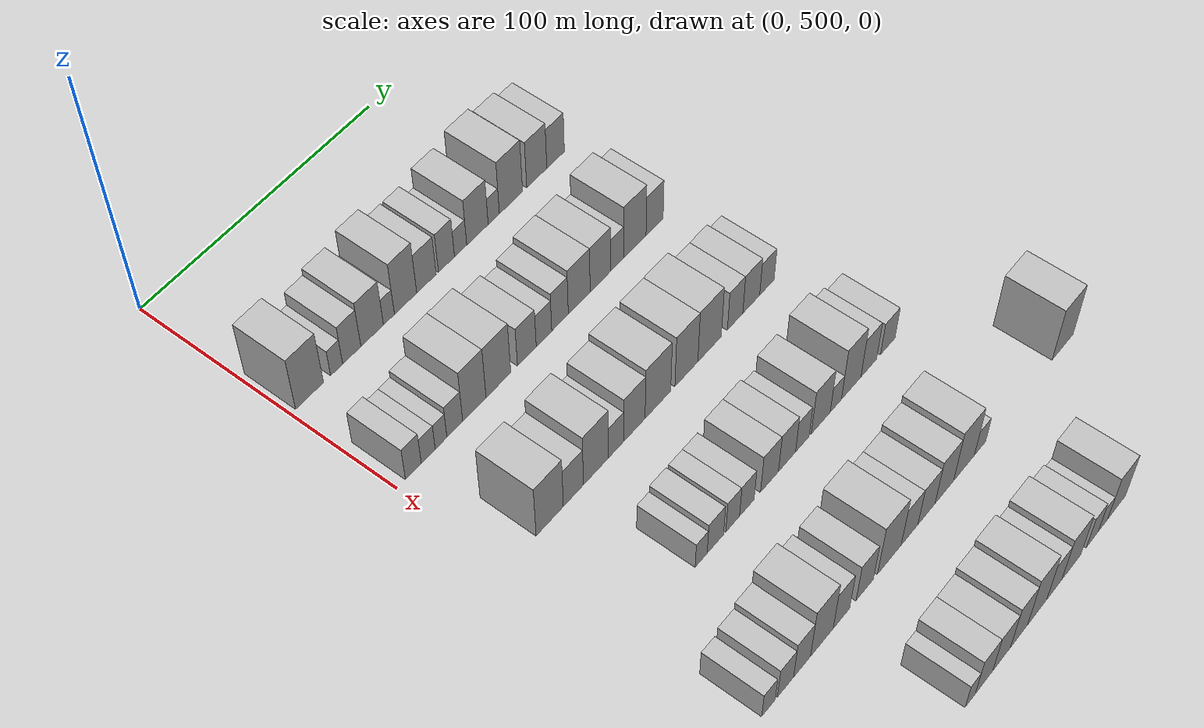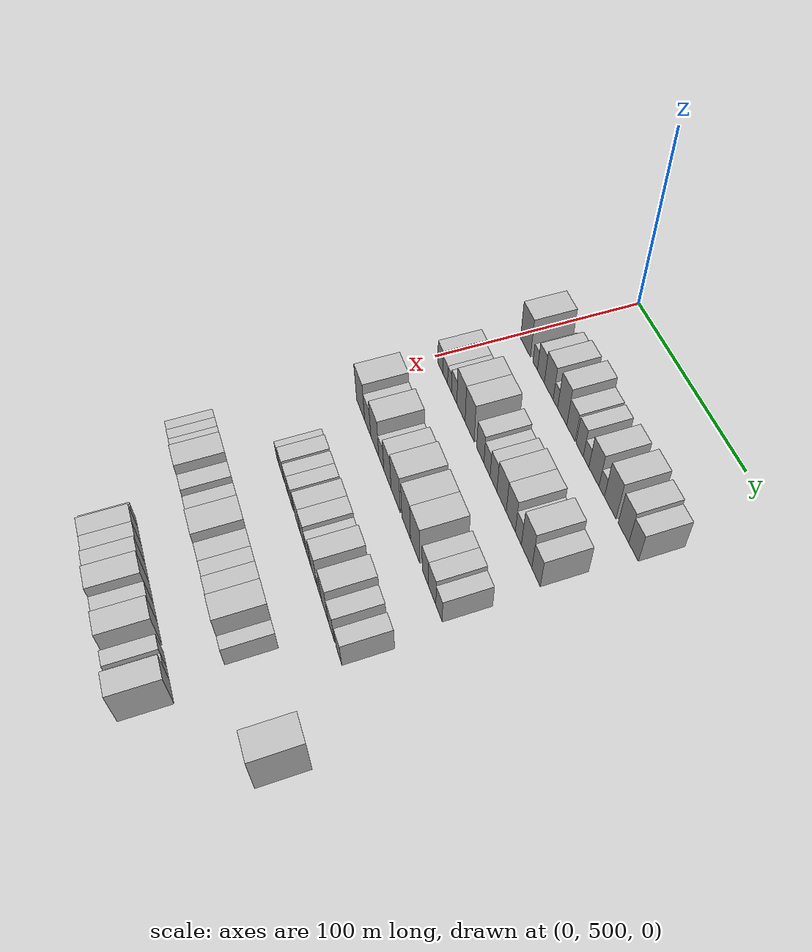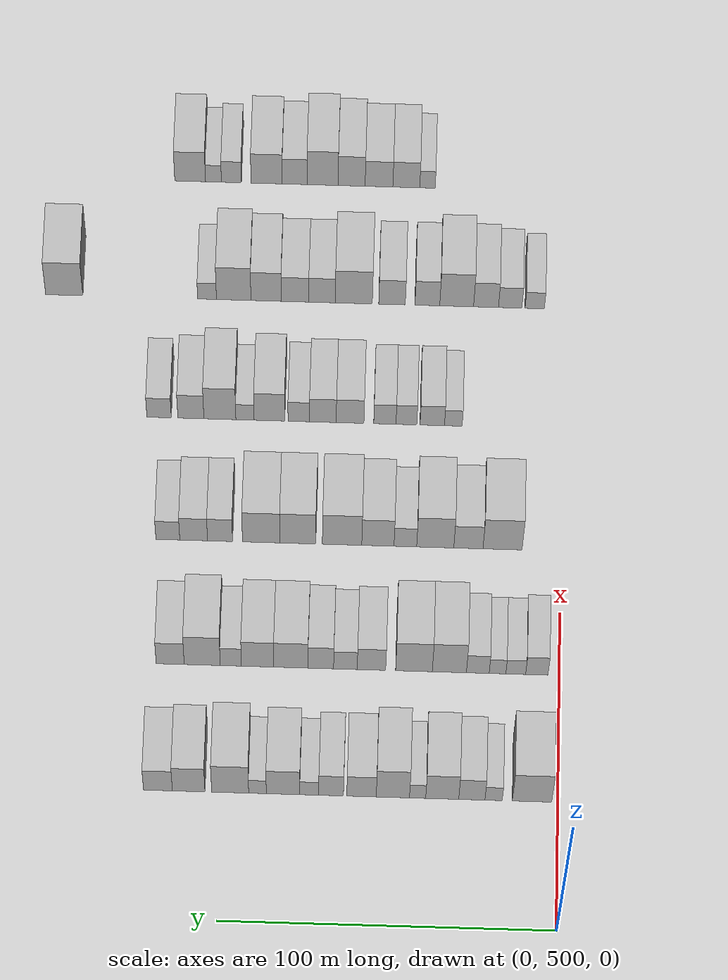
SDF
<sdf version="1.6">
 <world name="default">
  <model name="building_127">
   <static>1</static>
   <pose>50.0000 507.8237 0 0.000000 0.000000 0.000000</pose>
   <link name="link">
    <pose>0 0 12.00 0 0 0</pose>
    <collision name="collision"><geometry><box><size>20.0000 11.7088 24.0000</size></box></geometry></collision>
    <visual name="visual">
     <cast_shadows>0</cast_shadows>
     <geometry><box><size>20.0000 11.7088 24.0000</size></box></geometry>
     <material>
      <script>
       <uri>model://HANNAS_wall/materials/scripts</uri>
       <uri>model://HANNAS_wall/materials/textures</uri>
       <name>vrc/HANNAS_wall</name>
      </script>
     </material>
    </visual>
   </link>
  </model>
  <model name="building_128">
   <static>1</static>
   <pose>50.0000 519.2499 0 0.000000 0.000000 0.000000</pose>
   <link name="link">
    <pose>0 0 6.00 0 0 0</pose>
    <collision name="collision"><geometry><box><size>20.0000 5.1436 12.0000</size></box></geometry></collision>
    <visual name="visual">
     <cast_shadows>0</cast_shadows>
     <geometry><box><size>20.0000 5.1436 12.0000</size></box></geometry>
     <material>
      <script>
       <uri>model://HANNAS_wall/materials/scripts</uri>
       <uri>model://HANNAS_wall/materials/textures</uri>
       <name>vrc/HANNAS_wall</name>
      </script>
     </material>
    </visual>
   </link>
  </model>
  <model name="building_129">
   <static>1</static>
   <pose>50.0000 525.7228 0 0.000000 0.000000 0.000000</pose>
   <link name="link">
    <pose>0 0 9.00 0 0 0</pose>
    <collision name="collision"><geometry><box><size>20.0000 7.8022 18.0000</size></box></geometry></collision>
    <visual name="visual">
     <cast_shadows>0</cast_shadows>
     <geometry><box><size>20.0000 7.8022 18.0000</size></box></geometry>
     <material>
      <script>
       <uri>model://HANNAS_wall/materials/scripts</uri>
       <uri>model://HANNAS_wall/materials/textures</uri>
       <name>vrc/HANNAS_wall</name>
      </script>
     </material>
    </visual>
   </link>
  </model>
  <model name="building_130">
   <static>1</static>
   <pose>50.0000 534.5324 0 0.000000 0.000000 0.000000</pose>
   <link name="link">
    <pose>0 0 10.50 0 0 0</pose>
    <collision name="collision"><geometry><box><size>20.0000 9.8169 21.0000</size></box></geometry></collision>
    <visual name="visual">
     <cast_shadows>0</cast_shadows>
     <geometry><box><size>20.0000 9.8169 21.0000</size></box></geometry>
     <material>
      <script>
       <uri>model://HANNAS_wall/materials/scripts</uri>
       <uri>model://HANNAS_wall/materials/textures</uri>
       <name>vrc/HANNAS_wall</name>
      </script>
     </material>
    </visual>
   </link>
  </model>
  <model name="building_131">
   <static>1</static>
   <pose>50.0000 541.8533 0 0.000000 0.000000 0.000000</pose>
   <link name="link">
    <pose>0 0 6.00 0 0 0</pose>
    <collision name="collision"><geometry><box><size>20.0000 4.8249 12.0000</size></box></geometry></collision>
    <visual name="visual">
     <cast_shadows>0</cast_shadows>
     <geometry><box><size>20.0000 4.8249 12.0000</size></box></geometry>
     <material>
      <script>
       <uri>model://HANNAS_wall/materials/scripts</uri>
       <uri>model://HANNAS_wall/materials/textures</uri>
       <name>vrc/HANNAS_wall</name>
      </script>
     </material>
    </visual>
   </link>
  </model>
  <model name="building_132">
   <static>1</static>
   <pose>50.0000 549.2145 0 0.000000 0.000000 0.000000</pose>
   <link name="link">
    <pose>0 0 12.00 0 0 0</pose>
    <collision name="collision"><geometry><box><size>20.0000 9.8975 24.0000</size></box></geometry></collision>
    <visual name="visual">
     <cast_shadows>0</cast_shadows>
     <geometry><box><size>20.0000 9.8975 24.0000</size></box></geometry>
     <material>
      <script>
       <uri>model://HANNAS_wall/materials/scripts</uri>
       <uri>model://HANNAS_wall/materials/textures</uri>
       <name>vrc/HANNAS_wall</name>
      </script>
     </material>
    </visual>
   </link>
  </model>
  <model name="building_133">
   <static>1</static>
   <pose>50.0000 558.5361 0 0.000000 0.000000 0.000000</pose>
   <link name="link">
    <pose>0 0 9.00 0 0 0</pose>
    <collision name="collision"><geometry><box><size>20.0000 8.7458 18.0000</size></box></geometry></collision>
    <visual name="visual">
     <cast_shadows>0</cast_shadows>
     <geometry><box><size>20.0000 8.7458 18.0000</size></box></geometry>
     <material>
      <script>
       <uri>model://HANNAS_wall/materials/scripts</uri>
       <uri>model://HANNAS_wall/materials/textures</uri>
       <name>vrc/HANNAS_wall</name>
      </script>
     </material>
    </visual>
   </link>
  </model>
  <model name="building_134">
   <static>1</static>
   <pose>50.0000 567.5882 0 0.000000 0.000000 0.000000</pose>
   <link name="link">
    <pose>0 0 9.00 0 0 0</pose>
    <collision name="collision"><geometry><box><size>20.0000 7.3583 18.0000</size></box></geometry></collision>
    <visual name="visual">
     <cast_shadows>0</cast_shadows>
     <geometry><box><size>20.0000 7.3583 18.0000</size></box></geometry>
     <material>
      <script>
       <uri>model://HANNAS_wall/materials/scripts</uri>
       <uri>model://HANNAS_wall/materials/textures</uri>
       <name>vrc/HANNAS_wall</name>
      </script>
     </material>
    </visual>
   </link>
  </model>
  <model name="building_135">
   <static>1</static>
   <pose>50.0000 574.0757 0 0.000000 0.000000 0.000000</pose>
   <link name="link">
    <pose>0 0 6.00 0 0 0</pose>
    <collision name="collision"><geometry><box><size>20.0000 5.6167 12.0000</size></box></geometry></collision>
    <visual name="visual">
     <cast_shadows>0</cast_shadows>
     <geometry><box><size>20.0000 5.6167 12.0000</size></box></geometry>
     <material>
      <script>
       <uri>model://HANNAS_wall/materials/scripts</uri>
       <uri>model://HANNAS_wall/materials/textures</uri>
       <name>vrc/HANNAS_wall</name>
      </script>
     </material>
    </visual>
   </link>
  </model>
  <model name="building_136">
   <static>1</static>
   <pose>50.0000 581.8739 0 0.000000 0.000000 0.000000</pose>
   <link name="link">
    <pose>0 0 10.50 0 0 0</pose>
    <collision name="collision"><geometry><box><size>20.0000 9.9797 21.0000</size></box></geometry></collision>
    <visual name="visual">
     <cast_shadows>0</cast_shadows>
     <geometry><box><size>20.0000 9.9797 21.0000</size></box></geometry>
     <material>
      <script>
       <uri>model://HANNAS_wall/materials/scripts</uri>
       <uri>model://HANNAS_wall/materials/textures</uri>
       <name>vrc/HANNAS_wall</name>
      </script>
     </material>
    </visual>
   </link>
  </model>
  <model name="building_137">
   <static>1</static>
   <pose>50.0000 589.4873 0 0.000000 0.000000 0.000000</pose>
   <link name="link">
    <pose>0 0 6.00 0 0 0</pose>
    <collision name="collision"><geometry><box><size>20.0000 5.2471 12.0000</size></box></geometry></collision>
    <visual name="visual">
     <cast_shadows>0</cast_shadows>
     <geometry><box><size>20.0000 5.2471 12.0000</size></box></geometry>
     <material>
      <script>
       <uri>model://HANNAS_wall/materials/scripts</uri>
       <uri>model://HANNAS_wall/materials/textures</uri>
       <name>vrc/HANNAS_wall</name>
      </script>
     </material>
    </visual>
   </link>
  </model>
  <model name="building_138">
   <static>1</static>
   <pose>50.0000 597.6080 0 0.000000 0.000000 0.000000</pose>
   <link name="link">
    <pose>0 0 12.00 0 0 0</pose>
    <collision name="collision"><geometry><box><size>20.0000 10.9945 24.0000</size></box></geometry></collision>
    <visual name="visual">
     <cast_shadows>0</cast_shadows>
     <geometry><box><size>20.0000 10.9945 24.0000</size></box></geometry>
     <material>
      <script>
       <uri>model://HANNAS_wall/materials/scripts</uri>
       <uri>model://HANNAS_wall/materials/textures</uri>
       <name>vrc/HANNAS_wall</name>
      </script>
     </material>
    </visual>
   </link>
  </model>
  <model name="building_139">
   <static>1</static>
   <pose>50.0000 609.9554 0 0.000000 0.000000 0.000000</pose>
   <link name="link">
    <pose>0 0 10.50 0 0 0</pose>
    <collision name="collision"><geometry><box><size>20.0000 9.7003 21.0000</size></box></geometry></collision>
    <visual name="visual">
     <cast_shadows>0</cast_shadows>
     <geometry><box><size>20.0000 9.7003 21.0000</size></box></geometry>
     <material>
      <script>
       <uri>model://HANNAS_wall/materials/scripts</uri>
       <uri>model://HANNAS_wall/materials/textures</uri>
       <name>vrc/HANNAS_wall</name>
      </script>
     </material>
    </visual>
   </link>
  </model>
  <model name="building_140">
   <static>1</static>
   <pose>50.0000 619.1002 0 0.000000 0.000000 0.000000</pose>
   <link name="link">
    <pose>0 0 9.00 0 0 0</pose>
    <collision name="collision"><geometry><box><size>20.0000 8.5892 18.0000</size></box></geometry></collision>
    <visual name="visual">
     <cast_shadows>0</cast_shadows>
     <geometry><box><size>20.0000 8.5892 18.0000</size></box></geometry>
     <material>
      <script>
       <uri>model://HANNAS_wall/materials/scripts</uri>
       <uri>model://HANNAS_wall/materials/textures</uri>
       <name>vrc/HANNAS_wall</name>
      </script>
     </material>
    </visual>
   </link>
  </model>
  <model name="building_258">
   <static>1</static>
   <pose>90.0000 506.9615 0 0.000000 0.000000 0.000000</pose>
   <link name="link">
    <pose>0 0 7.50 0 0 0</pose>
    <collision name="collision"><geometry><box><size>20.0000 6.7073 15.0000</size></box></geometry></collision>
    <visual name="visual">
     <cast_shadows>0</cast_shadows>
     <geometry><box><size>20.0000 6.7073 15.0000</size></box></geometry>
     <material>
      <script>
       <uri>model://HANNAS_wall/materials/scripts</uri>
       <uri>model://HANNAS_wall/materials/textures</uri>
       <name>vrc/HANNAS_wall</name>
      </script>
     </material>
    </visual>
   </link>
  </model>
  <model name="building_259">
   <static>1</static>
   <pose>90.0000 513.2793 0 0.000000 0.000000 0.000000</pose>
   <link name="link">
    <pose>0 0 6.00 0 0 0</pose>
    <collision name="collision"><geometry><box><size>20.0000 5.9283 12.0000</size></box></geometry></collision>
    <visual name="visual">
     <cast_shadows>0</cast_shadows>
     <geometry><box><size>20.0000 5.9283 12.0000</size></box></geometry>
     <material>
      <script>
       <uri>model://HANNAS_wall/materials/scripts</uri>
       <uri>model://HANNAS_wall/materials/textures</uri>
       <name>vrc/HANNAS_wall</name>
      </script>
     </material>
    </visual>
   </link>
  </model>
  <model name="building_260">
   <static>1</static>
   <pose>90.0000 518.7518 0 0.000000 0.000000 0.000000</pose>
   <link name="link">
    <pose>0 0 6.00 0 0 0</pose>
    <collision name="collision"><geometry><box><size>20.0000 5.0167 12.0000</size></box></geometry></collision>
    <visual name="visual">
     <cast_shadows>0</cast_shadows>
     <geometry><box><size>20.0000 5.0167 12.0000</size></box></geometry>
     <material>
      <script>
       <uri>model://HANNAS_wall/materials/scripts</uri>
       <uri>model://HANNAS_wall/materials/textures</uri>
       <name>vrc/HANNAS_wall</name>
      </script>
     </material>
    </visual>
   </link>
  </model>
  <model name="building_261">
   <static>1</static>
   <pose>90.0000 524.6782 0 0.000000 0.000000 0.000000</pose>
   <link name="link">
    <pose>0 0 7.50 0 0 0</pose>
    <collision name="collision"><geometry><box><size>20.0000 6.8361 15.0000</size></box></geometry></collision>
    <visual name="visual">
     <cast_shadows>0</cast_shadows>
     <geometry><box><size>20.0000 6.8361 15.0000</size></box></geometry>
     <material>
      <script>
       <uri>model://HANNAS_wall/materials/scripts</uri>
       <uri>model://HANNAS_wall/materials/textures</uri>
       <name>vrc/HANNAS_wall</name>
      </script>
     </material>
    </visual>
   </link>
  </model>
  <model name="building_262">
   <static>1</static>
   <pose>90.0000 533.2211 0 0.000000 0.000000 0.000000</pose>
   <link name="link">
    <pose>0 0 12.00 0 0 0</pose>
    <collision name="collision"><geometry><box><size>20.0000 10.2496 24.0000</size></box></geometry></collision>
    <visual name="visual">
     <cast_shadows>0</cast_shadows>
     <geometry><box><size>20.0000 10.2496 24.0000</size></box></geometry>
     <material>
      <script>
       <uri>model://HANNAS_wall/materials/scripts</uri>
       <uri>model://HANNAS_wall/materials/textures</uri>
       <name>vrc/HANNAS_wall</name>
      </script>
     </material>
    </visual>
   </link>
  </model>
  <model name="building_263">
   <static>1</static>
   <pose>90.0000 543.8497 0 0.000000 0.000000 0.000000</pose>
   <link name="link">
    <pose>0 0 12.00 0 0 0</pose>
    <collision name="collision"><geometry><box><size>20.0000 11.0077 24.0000</size></box></geometry></collision>
    <visual name="visual">
     <cast_shadows>0</cast_shadows>
     <geometry><box><size>20.0000 11.0077 24.0000</size></box></geometry>
     <material>
      <script>
       <uri>model://HANNAS_wall/materials/scripts</uri>
       <uri>model://HANNAS_wall/materials/textures</uri>
       <name>vrc/HANNAS_wall</name>
      </script>
     </material>
    </visual>
   </link>
  </model>
  <model name="building_264">
   <static>1</static>
   <pose>90.0000 556.6206 0 0.000000 0.000000 0.000000</pose>
   <link name="link">
    <pose>0 0 9.00 0 0 0</pose>
    <collision name="collision"><geometry><box><size>20.0000 8.5340 18.0000</size></box></geometry></collision>
    <visual name="visual">
     <cast_shadows>0</cast_shadows>
     <geometry><box><size>20.0000 8.5340 18.0000</size></box></geometry>
     <material>
      <script>
       <uri>model://HANNAS_wall/materials/scripts</uri>
       <uri>model://HANNAS_wall/materials/textures</uri>
       <name>vrc/HANNAS_wall</name>
      </script>
     </material>
    </visual>
   </link>
  </model>
  <model name="building_265">
   <static>1</static>
   <pose>90.0000 564.4350 0 0.000000 0.000000 0.000000</pose>
   <link name="link">
    <pose>0 0 7.50 0 0 0</pose>
    <collision name="collision"><geometry><box><size>20.0000 7.0948 15.0000</size></box></geometry></collision>
    <visual name="visual">
     <cast_shadows>0</cast_shadows>
     <geometry><box><size>20.0000 7.0948 15.0000</size></box></geometry>
     <material>
      <script>
       <uri>model://HANNAS_wall/materials/scripts</uri>
       <uri>model://HANNAS_wall/materials/textures</uri>
       <name>vrc/HANNAS_wall</name>
      </script>
     </material>
    </visual>
   </link>
  </model>
  <model name="building_266">
   <static>1</static>
   <pose>90.0000 571.8234 0 0.000000 0.000000 0.000000</pose>
   <link name="link">
    <pose>0 0 9.00 0 0 0</pose>
    <collision name="collision"><geometry><box><size>20.0000 7.6820 18.0000</size></box></geometry></collision>
    <visual name="visual">
     <cast_shadows>0</cast_shadows>
     <geometry><box><size>20.0000 7.6820 18.0000</size></box></geometry>
     <material>
      <script>
       <uri>model://HANNAS_wall/materials/scripts</uri>
       <uri>model://HANNAS_wall/materials/textures</uri>
       <name>vrc/HANNAS_wall</name>
      </script>
     </material>
    </visual>
   </link>
  </model>
  <model name="building_267">
   <static>1</static>
   <pose>90.0000 580.8050 0 0.000000 0.000000 0.000000</pose>
   <link name="link">
    <pose>0 0 10.50 0 0 0</pose>
    <collision name="collision"><geometry><box><size>20.0000 10.2813 21.0000</size></box></geometry></collision>
    <visual name="visual">
     <cast_shadows>0</cast_shadows>
     <geometry><box><size>20.0000 10.2813 21.0000</size></box></geometry>
     <material>
      <script>
       <uri>model://HANNAS_wall/materials/scripts</uri>
       <uri>model://HANNAS_wall/materials/textures</uri>
       <name>vrc/HANNAS_wall</name>
      </script>
     </material>
    </visual>
   </link>
  </model>
  <model name="building_268">
   <static>1</static>
   <pose>90.0000 590.8108 0 0.000000 0.000000 0.000000</pose>
   <link name="link">
    <pose>0 0 10.50 0 0 0</pose>
    <collision name="collision"><geometry><box><size>20.0000 9.7304 21.0000</size></box></geometry></collision>
    <visual name="visual">
     <cast_shadows>0</cast_shadows>
     <geometry><box><size>20.0000 9.7304 21.0000</size></box></geometry>
     <material>
      <script>
       <uri>model://HANNAS_wall/materials/scripts</uri>
       <uri>model://HANNAS_wall/materials/textures</uri>
       <name>vrc/HANNAS_wall</name>
      </script>
     </material>
    </visual>
   </link>
  </model>
  <model name="building_269">
   <static>1</static>
   <pose>90.0000 598.8529 0 0.000000 0.000000 0.000000</pose>
   <link name="link">
    <pose>0 0 7.50 0 0 0</pose>
    <collision name="collision"><geometry><box><size>20.0000 6.3538 15.0000</size></box></geometry></collision>
    <visual name="visual">
     <cast_shadows>0</cast_shadows>
     <geometry><box><size>20.0000 6.3538 15.0000</size></box></geometry>
     <material>
      <script>
       <uri>model://HANNAS_wall/materials/scripts</uri>
       <uri>model://HANNAS_wall/materials/textures</uri>
       <name>vrc/HANNAS_wall</name>
      </script>
     </material>
    </visual>
   </link>
  </model>
  <model name="building_270">
   <static>1</static>
   <pose>90.0000 607.4461 0 0.000000 0.000000 0.000000</pose>
   <link name="link">
    <pose>0 0 12.00 0 0 0</pose>
    <collision name="collision"><geometry><box><size>20.0000 10.8324 24.0000</size></box></geometry></collision>
    <visual name="visual">
     <cast_shadows>0</cast_shadows>
     <geometry><box><size>20.0000 10.8324 24.0000</size></box></geometry>
     <material>
      <script>
       <uri>model://HANNAS_wall/materials/scripts</uri>
       <uri>model://HANNAS_wall/materials/textures</uri>
       <name>vrc/HANNAS_wall</name>
      </script>
     </material>
    </visual>
   </link>
  </model>
  <model name="building_271">
   <static>1</static>
   <pose>90.0000 617.0788 0 0.000000 0.000000 0.000000</pose>
   <link name="link">
    <pose>0 0 9.00 0 0 0</pose>
    <collision name="collision"><geometry><box><size>20.0000 8.4330 18.0000</size></box></geometry></collision>
    <visual name="visual">
     <cast_shadows>0</cast_shadows>
     <geometry><box><size>20.0000 8.4330 18.0000</size></box></geometry>
     <material>
      <script>
       <uri>model://HANNAS_wall/materials/scripts</uri>
       <uri>model://HANNAS_wall/materials/textures</uri>
       <name>vrc/HANNAS_wall</name>
      </script>
     </material>
    </visual>
   </link>
  </model>
  <model name="building_407">
   <static>1</static>
   <pose>130.0000 517.9141 0 0.000000 0.000000 0.000000</pose>
   <link name="link">
    <pose>0 0 12.00 0 0 0</pose>
    <collision name="collision"><geometry><box><size>20.0000 11.8391 24.0000</size></box></geometry></collision>
    <visual name="visual">
     <cast_shadows>0</cast_shadows>
     <geometry><box><size>20.0000 11.8391 24.0000</size></box></geometry>
     <material>
      <script>
       <uri>model://HANNAS_wall/materials/scripts</uri>
       <uri>model://HANNAS_wall/materials/textures</uri>
       <name>vrc/HANNAS_wall</name>
      </script>
     </material>
    </visual>
   </link>
  </model>
  <model name="building_408">
   <static>1</static>
   <pose>130.0000 528.2558 0 0.000000 0.000000 0.000000</pose>
   <link name="link">
    <pose>0 0 9.00 0 0 0</pose>
    <collision name="collision"><geometry><box><size>20.0000 8.8442 18.0000</size></box></geometry></collision>
    <visual name="visual">
     <cast_shadows>0</cast_shadows>
     <geometry><box><size>20.0000 8.8442 18.0000</size></box></geometry>
     <material>
      <script>
       <uri>model://HANNAS_wall/materials/scripts</uri>
       <uri>model://HANNAS_wall/materials/textures</uri>
       <name>vrc/HANNAS_wall</name>
      </script>
     </material>
    </visual>
   </link>
  </model>
  <model name="building_409">
   <static>1</static>
   <pose>130.0000 538.3096 0 0.000000 0.000000 0.000000</pose>
   <link name="link">
    <pose>0 0 12.00 0 0 0</pose>
    <collision name="collision"><geometry><box><size>20.0000 11.2634 24.0000</size></box></geometry></collision>
    <visual name="visual">
     <cast_shadows>0</cast_shadows>
     <geometry><box><size>20.0000 11.2634 24.0000</size></box></geometry>
     <material>
      <script>
       <uri>model://HANNAS_wall/materials/scripts</uri>
       <uri>model://HANNAS_wall/materials/textures</uri>
       <name>vrc/HANNAS_wall</name>
      </script>
     </material>
    </visual>
   </link>
  </model>
  <model name="building_410">
   <static>1</static>
   <pose>130.0000 547.3793 0 0.000000 0.000000 0.000000</pose>
   <link name="link">
    <pose>0 0 7.50 0 0 0</pose>
    <collision name="collision"><geometry><box><size>20.0000 6.8759 15.0000</size></box></geometry></collision>
    <visual name="visual">
     <cast_shadows>0</cast_shadows>
     <geometry><box><size>20.0000 6.8759 15.0000</size></box></geometry>
     <material>
      <script>
       <uri>model://HANNAS_wall/materials/scripts</uri>
       <uri>model://HANNAS_wall/materials/textures</uri>
       <name>vrc/HANNAS_wall</name>
      </script>
     </material>
    </visual>
   </link>
  </model>
  <model name="building_411">
   <static>1</static>
   <pose>130.0000 555.7069 0 0.000000 0.000000 0.000000</pose>
   <link name="link">
    <pose>0 0 10.50 0 0 0</pose>
    <collision name="collision"><geometry><box><size>20.0000 9.7793 21.0000</size></box></geometry></collision>
    <visual name="visual">
     <cast_shadows>0</cast_shadows>
     <geometry><box><size>20.0000 9.7793 21.0000</size></box></geometry>
     <material>
      <script>
       <uri>model://HANNAS_wall/materials/scripts</uri>
       <uri>model://HANNAS_wall/materials/textures</uri>
       <name>vrc/HANNAS_wall</name>
      </script>
     </material>
    </visual>
   </link>
  </model>
  <model name="building_412">
   <static>1</static>
   <pose>130.0000 566.5709 0 0.000000 0.000000 0.000000</pose>
   <link name="link">
    <pose>0 0 12.00 0 0 0</pose>
    <collision name="collision"><geometry><box><size>20.0000 11.9487 24.0000</size></box></geometry></collision>
    <visual name="visual">
     <cast_shadows>0</cast_shadows>
     <geometry><box><size>20.0000 11.9487 24.0000</size></box></geometry>
     <material>
      <script>
       <uri>model://HANNAS_wall/materials/scripts</uri>
       <uri>model://HANNAS_wall/materials/textures</uri>
       <name>vrc/HANNAS_wall</name>
      </script>
     </material>
    </visual>
   </link>
  </model>
  <model name="building_413">
   <static>1</static>
   <pose>130.0000 580.0032 0 0.000000 0.000000 0.000000</pose>
   <link name="link">
    <pose>0 0 12.00 0 0 0</pose>
    <collision name="collision"><geometry><box><size>20.0000 10.9160 24.0000</size></box></geometry></collision>
    <visual name="visual">
     <cast_shadows>0</cast_shadows>
     <geometry><box><size>20.0000 10.9160 24.0000</size></box></geometry>
     <material>
      <script>
       <uri>model://HANNAS_wall/materials/scripts</uri>
       <uri>model://HANNAS_wall/materials/textures</uri>
       <name>vrc/HANNAS_wall</name>
      </script>
     </material>
    </visual>
   </link>
  </model>
  <model name="building_414">
   <static>1</static>
   <pose>130.0000 591.1223 0 0.000000 0.000000 0.000000</pose>
   <link name="link">
    <pose>0 0 12.00 0 0 0</pose>
    <collision name="collision"><geometry><box><size>20.0000 11.3221 24.0000</size></box></geometry></collision>
    <visual name="visual">
     <cast_shadows>0</cast_shadows>
     <geometry><box><size>20.0000 11.3221 24.0000</size></box></geometry>
     <material>
      <script>
       <uri>model://HANNAS_wall/materials/scripts</uri>
       <uri>model://HANNAS_wall/materials/textures</uri>
       <name>vrc/HANNAS_wall</name>
      </script>
     </material>
    </visual>
   </link>
  </model>
  <model name="building_415">
   <static>1</static>
   <pose>130.0000 603.5851 0 0.000000 0.000000 0.000000</pose>
   <link name="link">
    <pose>0 0 9.00 0 0 0</pose>
    <collision name="collision"><geometry><box><size>20.0000 7.6035 18.0000</size></box></geometry></collision>
    <visual name="visual">
     <cast_shadows>0</cast_shadows>
     <geometry><box><size>20.0000 7.6035 18.0000</size></box></geometry>
     <material>
      <script>
       <uri>model://HANNAS_wall/materials/scripts</uri>
       <uri>model://HANNAS_wall/materials/textures</uri>
       <name>vrc/HANNAS_wall</name>
      </script>
     </material>
    </visual>
   </link>
  </model>
  <model name="building_416">
   <static>1</static>
   <pose>130.0000 611.5952 0 0.000000 0.000000 0.000000</pose>
   <link name="link">
    <pose>0 0 9.00 0 0 0</pose>
    <collision name="collision"><geometry><box><size>20.0000 8.4168 18.0000</size></box></geometry></collision>
    <visual name="visual">
     <cast_shadows>0</cast_shadows>
     <geometry><box><size>20.0000 8.4168 18.0000</size></box></geometry>
     <material>
      <script>
       <uri>model://HANNAS_wall/materials/scripts</uri>
       <uri>model://HANNAS_wall/materials/textures</uri>
       <name>vrc/HANNAS_wall</name>
      </script>
     </material>
    </visual>
   </link>
  </model>
  <model name="building_417">
   <static>1</static>
   <pose>130.0000 619.4290 0 0.000000 0.000000 0.000000</pose>
   <link name="link">
    <pose>0 0 7.50 0 0 0</pose>
    <collision name="collision"><geometry><box><size>20.0000 7.2508 15.0000</size></box></geometry></collision>
    <visual name="visual">
     <cast_shadows>0</cast_shadows>
     <geometry><box><size>20.0000 7.2508 15.0000</size></box></geometry>
     <material>
      <script>
       <uri>model://HANNAS_wall/materials/scripts</uri>
       <uri>model://HANNAS_wall/materials/textures</uri>
       <name>vrc/HANNAS_wall</name>
      </script>
     </material>
    </visual>
   </link>
  </model>
  <model name="building_538">
   <static>1</static>
   <pose>170.0000 533.6354 0 0.000000 0.000000 0.000000</pose>
   <link name="link">
    <pose>0 0 6.00 0 0 0</pose>
    <collision name="collision"><geometry><box><size>20.0000 5.4114 12.0000</size></box></geometry></collision>
    <visual name="visual">
     <cast_shadows>0</cast_shadows>
     <geometry><box><size>20.0000 5.4114 12.0000</size></box></geometry>
     <material>
      <script>
       <uri>model://HANNAS_wall/materials/scripts</uri>
       <uri>model://HANNAS_wall/materials/textures</uri>
       <name>vrc/HANNAS_wall</name>
      </script>
     </material>
    </visual>
   </link>
  </model>
  <model name="building_539">
   <static>1</static>
   <pose>170.0000 540.0781 0 0.000000 0.000000 0.000000</pose>
   <link name="link">
    <pose>0 0 7.50 0 0 0</pose>
    <collision name="collision"><geometry><box><size>20.0000 7.4740 15.0000</size></box></geometry></collision>
    <visual name="visual">
     <cast_shadows>0</cast_shadows>
     <geometry><box><size>20.0000 7.4740 15.0000</size></box></geometry>
     <material>
      <script>
       <uri>model://HANNAS_wall/materials/scripts</uri>
       <uri>model://HANNAS_wall/materials/textures</uri>
       <name>vrc/HANNAS_wall</name>
      </script>
     </material>
    </visual>
   </link>
  </model>
  <model name="building_540">
   <static>1</static>
   <pose>170.0000 548.0024 0 0.000000 0.000000 0.000000</pose>
   <link name="link">
    <pose>0 0 7.50 0 0 0</pose>
    <collision name="collision"><geometry><box><size>20.0000 6.3746 15.0000</size></box></geometry></collision>
    <visual name="visual">
     <cast_shadows>0</cast_shadows>
     <geometry><box><size>20.0000 6.3746 15.0000</size></box></geometry>
     <material>
      <script>
       <uri>model://HANNAS_wall/materials/scripts</uri>
       <uri>model://HANNAS_wall/materials/textures</uri>
       <name>vrc/HANNAS_wall</name>
      </script>
     </material>
    </visual>
   </link>
  </model>
  <model name="building_541">
   <static>1</static>
   <pose>170.0000 554.5923 0 0.000000 0.000000 0.000000</pose>
   <link name="link">
    <pose>0 0 7.50 0 0 0</pose>
    <collision name="collision"><geometry><box><size>20.0000 6.8050 15.0000</size></box></geometry></collision>
    <visual name="visual">
     <cast_shadows>0</cast_shadows>
     <geometry><box><size>20.0000 6.8050 15.0000</size></box></geometry>
     <material>
      <script>
       <uri>model://HANNAS_wall/materials/scripts</uri>
       <uri>model://HANNAS_wall/materials/textures</uri>
       <name>vrc/HANNAS_wall</name>
      </script>
     </material>
    </visual>
   </link>
  </model>
  <model name="building_542">
   <static>1</static>
   <pose>170.0000 565.2393 0 0.000000 0.000000 0.000000</pose>
   <link name="link">
    <pose>0 0 9.00 0 0 0</pose>
    <collision name="collision"><geometry><box><size>20.0000 8.4890 18.0000</size></box></geometry></collision>
    <visual name="visual">
     <cast_shadows>0</cast_shadows>
     <geometry><box><size>20.0000 8.4890 18.0000</size></box></geometry>
     <material>
      <script>
       <uri>model://HANNAS_wall/materials/scripts</uri>
       <uri>model://HANNAS_wall/materials/textures</uri>
       <name>vrc/HANNAS_wall</name>
      </script>
     </material>
    </visual>
   </link>
  </model>
  <model name="building_543">
   <static>1</static>
   <pose>170.0000 573.5914 0 0.000000 0.000000 0.000000</pose>
   <link name="link">
    <pose>0 0 9.00 0 0 0</pose>
    <collision name="collision"><geometry><box><size>20.0000 8.2154 18.0000</size></box></geometry></collision>
    <visual name="visual">
     <cast_shadows>0</cast_shadows>
     <geometry><box><size>20.0000 8.2154 18.0000</size></box></geometry>
     <material>
      <script>
       <uri>model://HANNAS_wall/materials/scripts</uri>
       <uri>model://HANNAS_wall/materials/textures</uri>
       <name>vrc/HANNAS_wall</name>
      </script>
     </material>
    </visual>
   </link>
  </model>
  <model name="building_544">
   <static>1</static>
   <pose>170.0000 580.9787 0 0.000000 0.000000 0.000000</pose>
   <link name="link">
    <pose>0 0 7.50 0 0 0</pose>
    <collision name="collision"><geometry><box><size>20.0000 6.5591 15.0000</size></box></geometry></collision>
    <visual name="visual">
     <cast_shadows>0</cast_shadows>
     <geometry><box><size>20.0000 6.5591 15.0000</size></box></geometry>
     <material>
      <script>
       <uri>model://HANNAS_wall/materials/scripts</uri>
       <uri>model://HANNAS_wall/materials/textures</uri>
       <name>vrc/HANNAS_wall</name>
      </script>
     </material>
    </visual>
   </link>
  </model>
  <model name="building_545">
   <static>1</static>
   <pose>170.0000 589.9425 0 0.000000 0.000000 0.000000</pose>
   <link name="link">
    <pose>0 0 10.50 0 0 0</pose>
    <collision name="collision"><geometry><box><size>20.0000 9.3684 21.0000</size></box></geometry></collision>
    <visual name="visual">
     <cast_shadows>0</cast_shadows>
     <geometry><box><size>20.0000 9.3684 21.0000</size></box></geometry>
     <material>
      <script>
       <uri>model://HANNAS_wall/materials/scripts</uri>
       <uri>model://HANNAS_wall/materials/textures</uri>
       <name>vrc/HANNAS_wall</name>
      </script>
     </material>
    </visual>
   </link>
  </model>
  <model name="building_546">
   <static>1</static>
   <pose>170.0000 597.4248 0 0.000000 0.000000 0.000000</pose>
   <link name="link">
    <pose>0 0 6.00 0 0 0</pose>
    <collision name="collision"><geometry><box><size>20.0000 5.5963 12.0000</size></box></geometry></collision>
    <visual name="visual">
     <cast_shadows>0</cast_shadows>
     <geometry><box><size>20.0000 5.5963 12.0000</size></box></geometry>
     <material>
      <script>
       <uri>model://HANNAS_wall/materials/scripts</uri>
       <uri>model://HANNAS_wall/materials/textures</uri>
       <name>vrc/HANNAS_wall</name>
      </script>
     </material>
    </visual>
   </link>
  </model>
  <model name="building_547">
   <static>1</static>
   <pose>170.0000 605.1228 0 0.000000 0.000000 0.000000</pose>
   <link name="link">
    <pose>0 0 12.00 0 0 0</pose>
    <collision name="collision"><geometry><box><size>20.0000 9.7996 24.0000</size></box></geometry></collision>
    <visual name="visual">
     <cast_shadows>0</cast_shadows>
     <geometry><box><size>20.0000 9.7996 24.0000</size></box></geometry>
     <material>
      <script>
       <uri>model://HANNAS_wall/materials/scripts</uri>
       <uri>model://HANNAS_wall/materials/textures</uri>
       <name>vrc/HANNAS_wall</name>
      </script>
     </material>
    </visual>
   </link>
  </model>
  <model name="building_548">
   <static>1</static>
   <pose>170.0000 614.0123 0 0.000000 0.000000 0.000000</pose>
   <link name="link">
    <pose>0 0 9.00 0 0 0</pose>
    <collision name="collision"><geometry><box><size>20.0000 7.9795 18.0000</size></box></geometry></collision>
    <visual name="visual">
     <cast_shadows>0</cast_shadows>
     <geometry><box><size>20.0000 7.9795 18.0000</size></box></geometry>
     <material>
      <script>
       <uri>model://HANNAS_wall/materials/scripts</uri>
       <uri>model://HANNAS_wall/materials/textures</uri>
       <name>vrc/HANNAS_wall</name>
      </script>
     </material>
    </visual>
   </link>
  </model>
  <model name="building_549">
   <static>1</static>
   <pose>170.0000 623.7448 0 0.000000 0.000000 0.000000</pose>
   <link name="link">
    <pose>0 0 7.50 0 0 0</pose>
    <collision name="collision"><geometry><box><size>20.0000 7.4855 15.0000</size></box></geometry></collision>
    <visual name="visual">
     <cast_shadows>0</cast_shadows>
     <geometry><box><size>20.0000 7.4855 15.0000</size></box></geometry>
     <material>
      <script>
       <uri>model://HANNAS_wall/materials/scripts</uri>
       <uri>model://HANNAS_wall/materials/textures</uri>
       <name>vrc/HANNAS_wall</name>
      </script>
     </material>
    </visual>
   </link>
  </model>
  <model name="building_667">
   <static>1</static>
   <pose>210.0000 509.2738 0 0.000000 0.000000 0.000000</pose>
   <link name="link">
    <pose>0 0 6.00 0 0 0</pose>
    <collision name="collision"><geometry><box><size>20.0000 5.9438 12.0000</size></box></geometry></collision>
    <visual name="visual">
     <cast_shadows>0</cast_shadows>
     <geometry><box><size>20.0000 5.9438 12.0000</size></box></geometry>
     <material>
      <script>
       <uri>model://HANNAS_wall/materials/scripts</uri>
       <uri>model://HANNAS_wall/materials/textures</uri>
       <name>vrc/HANNAS_wall</name>
      </script>
     </material>
    </visual>
   </link>
  </model>
  <model name="building_668">
   <static>1</static>
   <pose>210.0000 516.8575 0 0.000000 0.000000 0.000000</pose>
   <link name="link">
    <pose>0 0 7.50 0 0 0</pose>
    <collision name="collision"><geometry><box><size>20.0000 7.2235 15.0000</size></box></geometry></collision>
    <visual name="visual">
     <cast_shadows>0</cast_shadows>
     <geometry><box><size>20.0000 7.2235 15.0000</size></box></geometry>
     <material>
      <script>
       <uri>model://HANNAS_wall/materials/scripts</uri>
       <uri>model://HANNAS_wall/materials/textures</uri>
       <name>vrc/HANNAS_wall</name>
      </script>
     </material>
    </visual>
   </link>
  </model>
  <model name="building_669">
   <static>1</static>
   <pose>210.0000 524.3186 0 0.000000 0.000000 0.000000</pose>
   <link name="link">
    <pose>0 0 9.00 0 0 0</pose>
    <collision name="collision"><geometry><box><size>20.0000 7.6988 18.0000</size></box></geometry></collision>
    <visual name="visual">
     <cast_shadows>0</cast_shadows>
     <geometry><box><size>20.0000 7.6988 18.0000</size></box></geometry>
     <material>
      <script>
       <uri>model://HANNAS_wall/materials/scripts</uri>
       <uri>model://HANNAS_wall/materials/textures</uri>
       <name>vrc/HANNAS_wall</name>
      </script>
     </material>
    </visual>
   </link>
  </model>
  <model name="building_670">
   <static>1</static>
   <pose>210.0000 533.3963 0 0.000000 0.000000 0.000000</pose>
   <link name="link">
    <pose>0 0 12.00 0 0 0</pose>
    <collision name="collision"><geometry><box><size>20.0000 10.4565 24.0000</size></box></geometry></collision>
    <visual name="visual">
     <cast_shadows>0</cast_shadows>
     <geometry><box><size>20.0000 10.4565 24.0000</size></box></geometry>
     <material>
      <script>
       <uri>model://HANNAS_wall/materials/scripts</uri>
       <uri>model://HANNAS_wall/materials/textures</uri>
       <name>vrc/HANNAS_wall</name>
      </script>
     </material>
    </visual>
   </link>
  </model>
  <model name="building_671">
   <static>1</static>
   <pose>210.0000 542.4551 0 0.000000 0.000000 0.000000</pose>
   <link name="link">
    <pose>0 0 9.00 0 0 0</pose>
    <collision name="collision"><geometry><box><size>20.0000 7.6611 18.0000</size></box></geometry></collision>
    <visual name="visual">
     <cast_shadows>0</cast_shadows>
     <geometry><box><size>20.0000 7.6611 18.0000</size></box></geometry>
     <material>
      <script>
       <uri>model://HANNAS_wall/materials/scripts</uri>
       <uri>model://HANNAS_wall/materials/textures</uri>
       <name>vrc/HANNAS_wall</name>
      </script>
     </material>
    </visual>
   </link>
  </model>
  <model name="building_672">
   <static>1</static>
   <pose>210.0000 553.3831 0 0.000000 0.000000 0.000000</pose>
   <link name="link">
    <pose>0 0 9.00 0 0 0</pose>
    <collision name="collision"><geometry><box><size>20.0000 8.1948 18.0000</size></box></geometry></collision>
    <visual name="visual">
     <cast_shadows>0</cast_shadows>
     <geometry><box><size>20.0000 8.1948 18.0000</size></box></geometry>
     <material>
      <script>
       <uri>model://HANNAS_wall/materials/scripts</uri>
       <uri>model://HANNAS_wall/materials/textures</uri>
       <name>vrc/HANNAS_wall</name>
      </script>
     </material>
    </visual>
   </link>
  </model>
  <model name="building_673">
   <static>1</static>
   <pose>210.0000 565.2002 0 0.000000 0.000000 0.000000</pose>
   <link name="link">
    <pose>0 0 12.00 0 0 0</pose>
    <collision name="collision"><geometry><box><size>20.0000 11.4394 24.0000</size></box></geometry></collision>
    <visual name="visual">
     <cast_shadows>0</cast_shadows>
     <geometry><box><size>20.0000 11.4394 24.0000</size></box></geometry>
     <material>
      <script>
       <uri>model://HANNAS_wall/materials/scripts</uri>
       <uri>model://HANNAS_wall/materials/textures</uri>
       <name>vrc/HANNAS_wall</name>
      </script>
     </material>
    </visual>
   </link>
  </model>
  <model name="building_674">
   <static>1</static>
   <pose>210.0000 575.0252 0 0.000000 0.000000 0.000000</pose>
   <link name="link">
    <pose>0 0 9.00 0 0 0</pose>
    <collision name="collision"><geometry><box><size>20.0000 8.2106 18.0000</size></box></geometry></collision>
    <visual name="visual">
     <cast_shadows>0</cast_shadows>
     <geometry><box><size>20.0000 8.2106 18.0000</size></box></geometry>
     <material>
      <script>
       <uri>model://HANNAS_wall/materials/scripts</uri>
       <uri>model://HANNAS_wall/materials/textures</uri>
       <name>vrc/HANNAS_wall</name>
      </script>
     </material>
    </visual>
   </link>
  </model>
  <model name="building_675">
   <static>1</static>
   <pose>210.0000 583.3955 0 0.000000 0.000000 0.000000</pose>
   <link name="link">
    <pose>0 0 9.00 0 0 0</pose>
    <collision name="collision"><geometry><box><size>20.0000 8.5298 18.0000</size></box></geometry></collision>
    <visual name="visual">
     <cast_shadows>0</cast_shadows>
     <geometry><box><size>20.0000 8.5298 18.0000</size></box></geometry>
     <material>
      <script>
       <uri>model://HANNAS_wall/materials/scripts</uri>
       <uri>model://HANNAS_wall/materials/textures</uri>
       <name>vrc/HANNAS_wall</name>
      </script>
     </material>
    </visual>
   </link>
  </model>
  <model name="building_676">
   <static>1</static>
   <pose>210.0000 592.3327 0 0.000000 0.000000 0.000000</pose>
   <link name="link">
    <pose>0 0 10.50 0 0 0</pose>
    <collision name="collision"><geometry><box><size>20.0000 9.3447 21.0000</size></box></geometry></collision>
    <visual name="visual">
     <cast_shadows>0</cast_shadows>
     <geometry><box><size>20.0000 9.3447 21.0000</size></box></geometry>
     <material>
      <script>
       <uri>model://HANNAS_wall/materials/scripts</uri>
       <uri>model://HANNAS_wall/materials/textures</uri>
       <name>vrc/HANNAS_wall</name>
      </script>
     </material>
    </visual>
   </link>
  </model>
  <model name="building_677">
   <static>1</static>
   <pose>210.0000 602.3356 0 0.000000 0.000000 0.000000</pose>
   <link name="link">
    <pose>0 0 12.00 0 0 0</pose>
    <collision name="collision"><geometry><box><size>20.0000 10.6611 24.0000</size></box></geometry></collision>
    <visual name="visual">
     <cast_shadows>0</cast_shadows>
     <geometry><box><size>20.0000 10.6611 24.0000</size></box></geometry>
     <material>
      <script>
       <uri>model://HANNAS_wall/materials/scripts</uri>
       <uri>model://HANNAS_wall/materials/textures</uri>
       <name>vrc/HANNAS_wall</name>
      </script>
     </material>
    </visual>
   </link>
  </model>
  <model name="building_678">
   <static>1</static>
   <pose>210.0000 610.5755 0 0.000000 0.000000 0.000000</pose>
   <link name="link">
    <pose>0 0 6.00 0 0 0</pose>
    <collision name="collision"><geometry><box><size>20.0000 5.8187 12.0000</size></box></geometry></collision>
    <visual name="visual">
     <cast_shadows>0</cast_shadows>
     <geometry><box><size>20.0000 5.8187 12.0000</size></box></geometry>
     <material>
      <script>
       <uri>model://HANNAS_wall/materials/scripts</uri>
       <uri>model://HANNAS_wall/materials/textures</uri>
       <name>vrc/HANNAS_wall</name>
      </script>
     </material>
    </visual>
   </link>
  </model>
  <model name="building_679">
   <static>1</static>
   <pose>210.0000 654.7647 0 0.000000 0.000000 0.000000</pose>
   <link name="link">
    <pose>0 0 12.00 0 0 0</pose>
    <collision name="collision"><geometry><box><size>20.0000 11.5199 24.0000</size></box></geometry></collision>
    <visual name="visual">
     <cast_shadows>0</cast_shadows>
     <geometry><box><size>20.0000 11.5199 24.0000</size></box></geometry>
     <material>
      <script>
       <uri>model://HANNAS_wall/materials/scripts</uri>
       <uri>model://HANNAS_wall/materials/textures</uri>
       <name>vrc/HANNAS_wall</name>
      </script>
     </material>
    </visual>
   </link>
  </model>
  <model name="building_803">
   <static>1</static>
   <pose>250.0000 543.3054 0 0.000000 0.000000 0.000000</pose>
   <link name="link">
    <pose>0 0 6.00 0 0 0</pose>
    <collision name="collision"><geometry><box><size>20.0000 4.8140 12.0000</size></box></geometry></collision>
    <visual name="visual">
     <cast_shadows>0</cast_shadows>
     <geometry><box><size>20.0000 4.8140 12.0000</size></box></geometry>
     <material>
      <script>
       <uri>model://HANNAS_wall/materials/scripts</uri>
       <uri>model://HANNAS_wall/materials/textures</uri>
       <name>vrc/HANNAS_wall</name>
      </script>
     </material>
    </visual>
   </link>
  </model>
  <model name="building_804">
   <static>1</static>
   <pose>250.0000 549.9077 0 0.000000 0.000000 0.000000</pose>
   <link name="link">
    <pose>0 0 9.00 0 0 0</pose>
    <collision name="collision"><geometry><box><size>20.0000 8.3905 18.0000</size></box></geometry></collision>
    <visual name="visual">
     <cast_shadows>0</cast_shadows>
     <geometry><box><size>20.0000 8.3905 18.0000</size></box></geometry>
     <material>
      <script>
       <uri>model://HANNAS_wall/materials/scripts</uri>
       <uri>model://HANNAS_wall/materials/textures</uri>
       <name>vrc/HANNAS_wall</name>
      </script>
     </material>
    </visual>
   </link>
  </model>
  <model name="building_805">
   <static>1</static>
   <pose>250.0000 558.4272 0 0.000000 0.000000 0.000000</pose>
   <link name="link">
    <pose>0 0 9.00 0 0 0</pose>
    <collision name="collision"><geometry><box><size>20.0000 8.6486 18.0000</size></box></geometry></collision>
    <visual name="visual">
     <cast_shadows>0</cast_shadows>
     <geometry><box><size>20.0000 8.6486 18.0000</size></box></geometry>
     <material>
      <script>
       <uri>model://HANNAS_wall/materials/scripts</uri>
       <uri>model://HANNAS_wall/materials/textures</uri>
       <name>vrc/HANNAS_wall</name>
      </script>
     </material>
    </visual>
   </link>
  </model>
  <model name="building_806">
   <static>1</static>
   <pose>250.0000 566.9648 0 0.000000 0.000000 0.000000</pose>
   <link name="link">
    <pose>0 0 10.50 0 0 0</pose>
    <collision name="collision"><geometry><box><size>20.0000 8.4265 21.0000</size></box></geometry></collision>
    <visual name="visual">
     <cast_shadows>0</cast_shadows>
     <geometry><box><size>20.0000 8.4265 21.0000</size></box></geometry>
     <material>
      <script>
       <uri>model://HANNAS_wall/materials/scripts</uri>
       <uri>model://HANNAS_wall/materials/textures</uri>
       <name>vrc/HANNAS_wall</name>
      </script>
     </material>
    </visual>
   </link>
  </model>
  <model name="building_807">
   <static>1</static>
   <pose>250.0000 576.0342 0 0.000000 0.000000 0.000000</pose>
   <link name="link">
    <pose>0 0 12.00 0 0 0</pose>
    <collision name="collision"><geometry><box><size>20.0000 9.7124 24.0000</size></box></geometry></collision>
    <visual name="visual">
     <cast_shadows>0</cast_shadows>
     <geometry><box><size>20.0000 9.7124 24.0000</size></box></geometry>
     <material>
      <script>
       <uri>model://HANNAS_wall/materials/scripts</uri>
       <uri>model://HANNAS_wall/materials/textures</uri>
       <name>vrc/HANNAS_wall</name>
      </script>
     </material>
    </visual>
   </link>
  </model>
  <model name="building_808">
   <static>1</static>
   <pose>250.0000 584.7471 0 0.000000 0.000000 0.000000</pose>
   <link name="link">
    <pose>0 0 9.00 0 0 0</pose>
    <collision name="collision"><geometry><box><size>20.0000 7.7134 18.0000</size></box></geometry></collision>
    <visual name="visual">
     <cast_shadows>0</cast_shadows>
     <geometry><box><size>20.0000 7.7134 18.0000</size></box></geometry>
     <material>
      <script>
       <uri>model://HANNAS_wall/materials/scripts</uri>
       <uri>model://HANNAS_wall/materials/textures</uri>
       <name>vrc/HANNAS_wall</name>
      </script>
     </material>
    </visual>
   </link>
  </model>
  <model name="building_809">
   <static>1</static>
   <pose>250.0000 593.4858 0 0.000000 0.000000 0.000000</pose>
   <link name="link">
    <pose>0 0 10.50 0 0 0</pose>
    <collision name="collision"><geometry><box><size>20.0000 9.7639 21.0000</size></box></geometry></collision>
    <visual name="visual">
     <cast_shadows>0</cast_shadows>
     <geometry><box><size>20.0000 9.7639 21.0000</size></box></geometry>
     <material>
      <script>
       <uri>model://HANNAS_wall/materials/scripts</uri>
       <uri>model://HANNAS_wall/materials/textures</uri>
       <name>vrc/HANNAS_wall</name>
      </script>
     </material>
    </visual>
   </link>
  </model>
  <model name="building_810">
   <static>1</static>
   <pose>250.0000 604.4934 0 0.000000 0.000000 0.000000</pose>
   <link name="link">
    <pose>0 0 7.50 0 0 0</pose>
    <collision name="collision"><geometry><box><size>20.0000 6.2512 15.0000</size></box></geometry></collision>
    <visual name="visual">
     <cast_shadows>0</cast_shadows>
     <geometry><box><size>20.0000 6.2512 15.0000</size></box></geometry>
     <material>
      <script>
       <uri>model://HANNAS_wall/materials/scripts</uri>
       <uri>model://HANNAS_wall/materials/textures</uri>
       <name>vrc/HANNAS_wall</name>
      </script>
     </material>
    </visual>
   </link>
  </model>
  <model name="building_811">
   <static>1</static>
   <pose>250.0000 610.0928 0 0.000000 0.000000 0.000000</pose>
   <link name="link">
    <pose>0 0 6.00 0 0 0</pose>
    <collision name="collision"><geometry><box><size>20.0000 4.9477 12.0000</size></box></geometry></collision>
    <visual name="visual">
     <cast_shadows>0</cast_shadows>
     <geometry><box><size>20.0000 4.9477 12.0000</size></box></geometry>
     <material>
      <script>
       <uri>model://HANNAS_wall/materials/scripts</uri>
       <uri>model://HANNAS_wall/materials/textures</uri>
       <name>vrc/HANNAS_wall</name>
      </script>
     </material>
    </visual>
   </link>
  </model>
  <model name="building_812">
   <static>1</static>
   <pose>250.0000 617.3660 0 0.000000 0.000000 0.000000</pose>
   <link name="link">
    <pose>0 0 10.50 0 0 0</pose>
    <collision name="collision"><geometry><box><size>20.0000 9.5987 21.0000</size></box></geometry></collision>
    <visual name="visual">
     <cast_shadows>0</cast_shadows>
     <geometry><box><size>20.0000 9.5987 21.0000</size></box></geometry>
     <material>
      <script>
       <uri>model://HANNAS_wall/materials/scripts</uri>
       <uri>model://HANNAS_wall/materials/textures</uri>
       <name>vrc/HANNAS_wall</name>
      </script>
     </material>
    </visual>
   </link>
  </model>
 </world>
</sdf>
